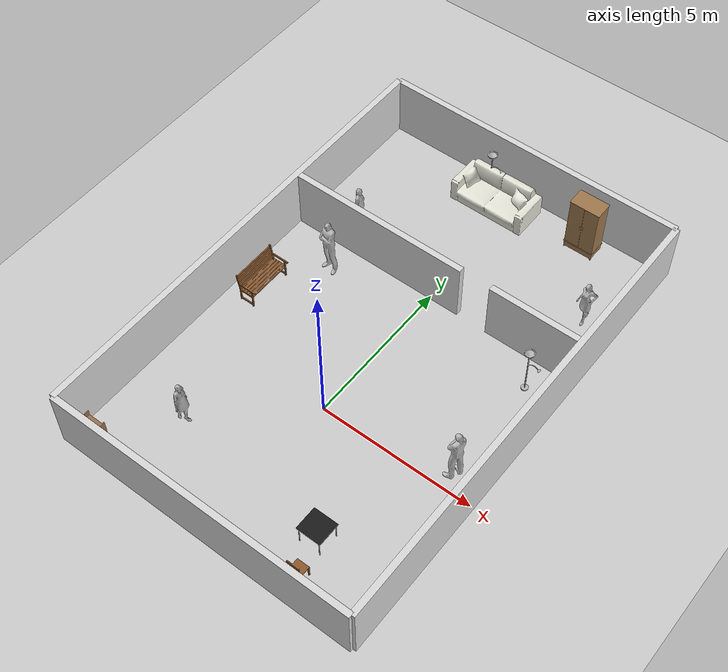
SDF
<?xml version="1.0" ?>
<sdf version="1.6">
  <world name="default">
    <physics name="1ms" type="ignored">
      <max_step_size>0.001</max_step_size>
      <real_time_factor>1.0</real_time_factor>
    </physics>
    <gravity>0 0 -9.81</gravity>
    <plugin filename="gz-sim-physics-system" name="gz::sim::systems::Physics"/>
    <plugin filename="gz-sim-user-commands-system" name="gz::sim::systems::UserCommands"/>
    <plugin filename="gz-sim-scene-broadcaster-system" name="gz::sim::systems::SceneBroadcaster"/>
    <plugin filename="gz-sim-sensors-system" name="gz::sim::systems::Sensors">
      <render_engine>ogre2</render_engine>
    </plugin>

    <scene>
      <ambient>0.4 0.4 0.4 1</ambient>
      <background>0.7 0.7 0.7 1</background>
      <shadows>true</shadows>
    </scene>

    <!-- A global light source (V8: model://sun) -->
    <light type="directional" name="sun">
      <cast_shadows>true</cast_shadows>
      <pose>0 0 10 0 0 0</pose>
      <diffuse>0.8 0.8 0.8 1</diffuse>
      <specular>0.2 0.2 0.2 1</specular>
      <attenuation>
        <range>1000</range>
        <constant>0.9</constant>
        <linear>0.01</linear>
        <quadratic>0.001</quadratic>
      </attenuation>
      <direction>-0.5 0.1 -0.9</direction>
    </light>

    <!-- A ground plane (V8: model://ground_plane) -->
    <model name="ground_plane">
      <static>true</static>
      <link name="link">
        <collision name="collision">
          <geometry><plane><normal>0 0 1</normal><size>100 100</size></plane></geometry>
          <surface><friction><ode><mu>100</mu><mu2>50</mu2></ode></friction></surface>
        </collision>
        <visual name="visual">
          <geometry><plane><normal>0 0 1</normal><size>100 100</size></plane></geometry>
          <material>
            <ambient>0.8 0.8 0.8 1</ambient>
            <diffuse>0.8 0.8 0.8 1</diffuse>
            <specular>0.8 0.8 0.8 1</specular>
          </material>
        </visual>
      </link>
    </model>

    <model name="wall_1_model">
      <pose>0 -5 1 0 0 0</pose>
      <static>true</static>
      <link name="wall_1_body">
        <inertial>
          <mass>1.0</mass>
          <inertia>
            <ixx>1.0</ixx>
            <ixy>0.0</ixy>
            <ixz>0.0</ixz>
            <iyy>1.0</iyy>
            <iyz>0.0</iyz>
            <izz>1.0</izz>
          </inertia>
        </inertial>
        <collision name="collision">
          <geometry>
            <box>
              <size>10 0.2 2</size>
            </box>
          </geometry>
        </collision>
        <visual name="visual">
          <geometry>
            <box>
              <size>10 0.2 2</size>
            </box>
          </geometry>
          <!-- V9: en Gazebo Classic una pared sin material se veía gris claro; en Harmonic, oscura -->
          <material>
            <ambient>0.85 0.85 0.85 1</ambient>
            <diffuse>0.85 0.85 0.85 1</diffuse>
            <specular>0.1 0.1 0.1 1</specular>
          </material>
        </visual>
      </link>
    </model>
    <model name="wall_2_model">
      <pose>0 10 1 0 0 0</pose>
      <static>true</static>
      <link name="wall_2_body">
        <inertial>
          <mass>1.0</mass>
          <inertia>
            <ixx>1.0</ixx>
            <ixy>0.0</ixy>
            <ixz>0.0</ixz>
            <iyy>1.0</iyy>
            <iyz>0.0</iyz>
            <izz>1.0</izz>
          </inertia>
        </inertial>
        <collision name="collision">
          <geometry>
            <box>
              <size>10 0.2 2</size>
            </box>
          </geometry>
        </collision>
        <visual name="visual">
          <geometry>
            <box>
              <size>10 0.2 2</size>
            </box>
          </geometry>
          <!-- V9: en Gazebo Classic una pared sin material se veía gris claro; en Harmonic, oscura -->
          <material>
            <ambient>0.85 0.85 0.85 1</ambient>
            <diffuse>0.85 0.85 0.85 1</diffuse>
            <specular>0.1 0.1 0.1 1</specular>
          </material>
        </visual>
      </link>
    </model>
    <model name="wall_3_model">
      <pose>-5 2.5 1 0 0 0</pose>
      <static>true</static>
      <link name="wall_3_body">
        <inertial>
          <mass>1.0</mass>
          <inertia>
            <ixx>1.0</ixx>
            <ixy>0.0</ixy>
            <ixz>0.0</ixz>
            <iyy>1.0</iyy>
            <iyz>0.0</iyz>
            <izz>1.0</izz>
          </inertia>
        </inertial>
        <collision name="collision">
          <geometry>
            <box>
              <size>0.2 15 2</size>
            </box>
          </geometry>
        </collision>
        <visual name="visual">
          <geometry>
            <box>
              <size>0.2 15 2</size>
            </box>
          </geometry>
          <!-- V9: en Gazebo Classic una pared sin material se veía gris claro; en Harmonic, oscura -->
          <material>
            <ambient>0.85 0.85 0.85 1</ambient>
            <diffuse>0.85 0.85 0.85 1</diffuse>
            <specular>0.1 0.1 0.1 1</specular>
          </material>
        </visual>
      </link>
    </model>
    <model name="wall_4_model">
      <pose>5 2.5 1 0 0 0</pose>
      <static>true</static>
      <link name="wall_4_body">
        <inertial>
          <mass>1.0</mass>
          <inertia>
            <ixx>1.0</ixx>
            <ixy>0.0</ixy>
            <ixz>0.0</ixz>
            <iyy>1.0</iyy>
            <iyz>0.0</iyz>
            <izz>1.0</izz>
          </inertia>
        </inertial>
        <collision name="collision">
          <geometry>
            <box>
              <size>0.2 15 2</size>
            </box>
          </geometry>
        </collision>
        <visual name="visual">
          <geometry>
            <box>
              <size>0.2 15 2</size>
            </box>
          </geometry>
          <!-- V9: en Gazebo Classic una pared sin material se veía gris claro; en Harmonic, oscura -->
          <material>
            <ambient>0.85 0.85 0.85 1</ambient>
            <diffuse>0.85 0.85 0.85 1</diffuse>
            <specular>0.1 0.1 0.1 1</specular>
          </material>
        </visual>
      </link>
    </model>
    <model name="wall_5_model">
      <pose>-2 5 1 0 0 0</pose>
      <static>true</static>
      <link name="wall_5_body">
        <inertial>
          <mass>1.0</mass>
          <inertia>
            <ixx>1.0</ixx>
            <ixy>0.0</ixy>
            <ixz>0.0</ixz>
            <iyy>1.0</iyy>
            <iyz>0.0</iyz>
            <izz>1.0</izz>
          </inertia>
        </inertial>
        <collision name="collision">
          <geometry>
            <box>
              <size>6 0.2 2</size>
            </box>
          </geometry>
        </collision>
        <visual name="visual">
          <geometry>
            <box>
              <size>6 0.2 2</size>
            </box>
          </geometry>
          <!-- V9: en Gazebo Classic una pared sin material se veía gris claro; en Harmonic, oscura -->
          <material>
            <ambient>0.85 0.85 0.85 1</ambient>
            <diffuse>0.85 0.85 0.85 1</diffuse>
            <specular>0.1 0.1 0.1 1</specular>
          </material>
        </visual>
      </link>
    </model>
    <model name="wall_6_model">
      <pose>3.5 5 1 0 0 0</pose>
      <static>true</static>
      <link name="wall_6_body">
        <inertial>
          <mass>1.0</mass>
          <inertia>
            <ixx>1.0</ixx>
            <ixy>0.0</ixy>
            <ixz>0.0</ixz>
            <iyy>1.0</iyy>
            <iyz>0.0</iyz>
            <izz>1.0</izz>
          </inertia>
        </inertial>
        <collision name="collision">
          <geometry>
            <box>
              <size>3 0.2 2</size>
            </box>
          </geometry>
        </collision>
        <visual name="visual">
          <geometry>
            <box>
              <size>3 0.2 2</size>
            </box>
          </geometry>
          <!-- V9: en Gazebo Classic una pared sin material se veía gris claro; en Harmonic, oscura -->
          <material>
            <ambient>0.85 0.85 0.85 1</ambient>
            <diffuse>0.85 0.85 0.85 1</diffuse>
            <specular>0.1 0.1 0.1 1</specular>
          </material>
        </visual>
      </link>
    </model>
    <!-- Add a chair -->
    <include>
      <uri>model://dining_chair</uri>
      <pose>2.5 -4.5 0.01 0 0 0</pose>
    </include>
    <!-- Add a kitchen table -->
    <include>
      <uri>model://kitchen_table</uri>
      <pose>2.000000 -3.551060 0.000000 0.000000 0.000000 0.000000</pose>
    </include>
    <!-- Add a wardrobe -->
    <include>
      <uri>model://wardrobe</uri>
      <pose>2.000000 9.000000 0.000000 0.000000 0.000000 0.000000</pose>
    </include>
    <!-- Add a closet -->
    <include>
      <uri>model://closet</uri>
      <pose>-4.000000 -5.000000 0.000000 0.000000 0.000000 0.000000</pose>
    </include>
    <!-- Add a bench -->
    <include>
      <uri>model://bench</uri>
      <pose>-4.465430 1.502710 0.000000 0.000000 0.000000 0.000000</pose>
    </include>
    <!-- Add a sofa -->
    <include>
      <uri>model://sofa</uri>
      <pose>-0.518195 9.000000 0.000000 0.000000 0.000000 0.000000</pose>
    </include>
    <!-- Add a floor lamp -->
    <include>
      <name>floor_lamp_0</name>
      <uri>model://floor_lamp</uri>
      <pose>-1.000000 9.417350 0.000000 0.000000 0.000000 0.000000</pose>
    </include>
    <!-- Add a floor lamp -->
    <include>
      <name>floor_lamp_1</name>
      <uri>model://floor_lamp</uri>
      <pose>4.000000 4.00000 0.000000 0.000000 0.000000 0.000000</pose>
    </include>
    <!-- Add male 03 -->
    <include>
      <name>male03</name>
      <uri>model://citizen_extras_male_03</uri>
      <pose>4.0 0.53 0.01 0.0125 0.0023 -1.718</pose>
    </include>

    <light type="point" name="male03light">
      <!-- Light in front of the face of the model -->
      <pose>3.6 0.53 1.6 0 0 0</pose>
      <diffuse>0.5 0.5 0.5 1</diffuse>
      <specular>0.1 0.1 0.1 1</specular>
      <attenuation>
        <!-- short range so it doesn't light the ground -->
        <range>1.0</range>
        <linear>0.01</linear>
        <constant>0.3</constant>
        <quadratic>0.0</quadratic>
      </attenuation>
      <direction>0 0 -1</direction>
      <spot>
        <inner_angle>0.6</inner_angle>
        <outer_angle>0.8</outer_angle>
        <falloff>1.2</falloff>
      </spot>
      <cast_shadows>false</cast_shadows>
    </light>

    <!-- Add female 02 -->
    <include>
      <name>female02</name>
      <uri>model://citizen_extras_female_02</uri>
      <pose>-2.84 -2.63 0.01 0 -0.025 1.683</pose>
    </include>

    <light type="point" name="female02light">
      <!-- Light in front of the face of the model -->
      <pose>-2.5 -2.63 1.5 0 0 0</pose>
      <diffuse>0.5 0.5 0.5 1</diffuse>
      <specular>0.1 0.1 0.1 1</specular>
      <attenuation>
        <!-- short range so it doesn't light the ground -->
        <range>1.0</range>
        <linear>0.01</linear>
        <constant>0.3</constant>
        <quadratic>0.0</quadratic>
      </attenuation>
      <direction>0 0 -1</direction>
      <spot>
        <inner_angle>0.6</inner_angle>
        <outer_angle>0.8</outer_angle>
        <falloff>1.2</falloff>
      </spot>
      <cast_shadows>false</cast_shadows>
    </light>

    <!-- Add female 03 -->
    <include>
      <name>female03</name>
      <uri>model://citizen_extras_female_03</uri>
      <pose>-3.3 5.8 0.01 0.011 0.0126 1.6451</pose>
    </include>

    <light type="point" name="female03light">
      <!-- Light in front of the face of the model -->
      <pose>-3.0 6.2 1.5 0 0 0</pose>
      <diffuse>0.5 0.5 0.5 1</diffuse>
      <specular>0.1 0.1 0.1 1</specular>
      <attenuation>
        <!-- short range so it doesn't light the ground -->
        <range>1.0</range>
        <linear>0.01</linear>
        <constant>0.3</constant>
        <quadratic>0.0</quadratic>
      </attenuation>
      <direction>0 0 -1</direction>
      <spot>
        <inner_angle>0.6</inner_angle>
        <outer_angle>0.8</outer_angle>
        <falloff>1.2</falloff>
      </spot>
      <cast_shadows>false</cast_shadows>
    </light>

    <!-- Add female 02 bis -->
    <include>
      <name>female02bis</name>
      <uri>model://citizen_extras_female_02</uri>
      <pose>4.000000 7.000000 0.000000 0.000000 0.000000 0.000000</pose>
    </include>

    <light type="point" name="female02bislight">
      <!-- Light in front of the face of the model -->
      <pose>3.8 6.7 1.5 0 0 0</pose>
      <diffuse>0.5 0.5 0.5 1</diffuse>
      <specular>0.1 0.1 0.1 1</specular>
      <attenuation>
        <!-- short range so it doesn't light the ground -->
        <range>1.0</range>
        <linear>0.01</linear>
        <constant>0.3</constant>
        <quadratic>0.0</quadratic>
      </attenuation>
      <direction>0 0 -1</direction>
      <spot>
        <inner_angle>0.6</inner_angle>
        <outer_angle>0.8</outer_angle>
        <falloff>1.2</falloff>
      </spot>
      <cast_shadows>false</cast_shadows>
    </light>

    <!-- Add male 03 bis -->
    <include>
      <name>male03bis</name>
      <uri>model://citizen_extras_male_03</uri>
      <pose>-3.000000 4.000000 0.000000 0.000000 0.000000 0.000000</pose>
    </include>

    <light type="point" name="male03bislight">
      <!-- Light in front of the face of the model -->
      <pose>-2.9 3.7 1.5 0 0 0</pose>
      <diffuse>0.5 0.5 0.5 1</diffuse>
      <specular>0.1 0.1 0.1 1</specular>
      <attenuation>
        <!-- short range so it doesn't light the ground -->
        <range>1.0</range>
        <linear>0.01</linear>
        <constant>0.3</constant>
        <quadratic>0.0</quadratic>
      </attenuation>
      <direction>0 0 -1</direction>
      <spot>
        <inner_angle>0.6</inner_angle>
        <outer_angle>0.8</outer_angle>
        <falloff>1.2</falloff>
      </spot>
      <cast_shadows>false</cast_shadows>
    </light>

    <!-- Change the gazebo camera point of view -->
    <gui fullscreen="0">
      <camera name="user_camera">
        <pose>0.685291 2.730300 18.477800 0.000000 1.529800 -3.138990</pose>
        <view_controller>orbit</view_controller>
      </camera>
    </gui>
  </world>
</sdf>

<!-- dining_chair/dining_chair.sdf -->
<sdf version="1.4">
  <model name="dining_chair">
    <static>1</static>
    <link name="link">

      <collision name="colision1">
        <pose>0 0 0 0 0 0</pose>
        <geometry>
          <mesh>
            <uri>model://dining_chair/meshes/dining_chair.stl</uri>
	    <scale> 1 1 1 </scale>
          </mesh>
        </geometry>
        <surface>
          <bounce />
          <friction>
            <ode />
          </friction>
          <contact>
            <ode />
          </contact>
        </surface>
      </collision>

      <visual name="visual1">
        <pose>0 0 0 0 0 0</pose>
        <geometry>
          <mesh>
            <uri>model://dining_chair/meshes/dining_chair.stl</uri>
	    <scale> 1 1 1 </scale>
          </mesh>
        </geometry>
        <material>
          <!-- V8: script Gazebo/Wood (Gazebo Classic) -->
          <ambient>0.55 0.35 0.18 1</ambient>
          <diffuse>0.55 0.35 0.18 1</diffuse>
          <specular>0.1 0.1 0.1 1</specular>
        </material>
      </visual>

      <velocity_decay>
        <linear>0.000000</linear>
        <angular>0.000000</angular>
      </velocity_decay>
      <self_collide>0</self_collide>
      <kinematic>0</kinematic>
      <gravity>1</gravity>
    </link>
  </model>
</sdf>

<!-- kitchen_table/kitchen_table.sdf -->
<sdf version="1.4">
  <model name="kitchen_table">
    <static>1</static>
    <link name="link">

      <collision name="colision1">
        <pose>0 0 0 0 0 0</pose>
        <geometry>
          <mesh>
            <uri>model://kitchen_table/meshes/kitchen_table.stl</uri>
	    <scale> 1 1 1 </scale>
          </mesh>
        </geometry>
        <surface>
          <bounce />
          <friction>
            <ode />
          </friction>
          <contact>
            <ode />
          </contact>
        </surface>
      </collision>

      <visual name="visual1">
        <pose>0 0 0 0 0 0</pose>
        <geometry>
          <mesh>
            <uri>model://kitchen_table/meshes/kitchen_table.stl</uri>
	    <scale> 1 1 1 </scale>
          </mesh>
        </geometry>
        <material>
          <!-- V8: script Gazebo/FlatBlack (Gazebo Classic) -->
          <ambient>0.10 0.10 0.10 1</ambient>
          <diffuse>0.10 0.10 0.10 1</diffuse>
          <specular>0.1 0.1 0.1 1</specular>
        </material>
      </visual>

      <velocity_decay>
        <linear>0.000000</linear>
        <angular>0.000000</angular>
      </velocity_decay>
      <self_collide>0</self_collide>
      <kinematic>0</kinematic>
      <gravity>1</gravity>
    </link>
  </model>
</sdf>

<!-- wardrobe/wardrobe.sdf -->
<sdf version="1.4">
  <model name="wardrobe">
    <static>1</static>
    <link name="link">

      <collision name="colision1">
        <pose>0 0 0 0 0 0</pose>
        <geometry>
          <mesh>
            <uri>model://wardrobe/meshes/wardrobe.stl</uri>
	    <scale> 1 1 1 </scale>
          </mesh>
        </geometry>
        <surface>
          <bounce />
          <friction>
            <ode />
          </friction>
          <contact>
            <ode />
          </contact>
        </surface>
      </collision>

      <visual name="visual1">
        <pose>0 0 0 0 0 0</pose>
        <geometry>
          <mesh>
            <uri>model://wardrobe/meshes/wardrobe.stl</uri>
	    <scale> 1 1 1 </scale>
          </mesh>
        </geometry>
        <material>
          <!-- V8: script Gazebo/WoodPallet (Gazebo Classic) -->
          <ambient>0.62 0.47 0.30 1</ambient>
          <diffuse>0.62 0.47 0.30 1</diffuse>
          <specular>0.1 0.1 0.1 1</specular>
        </material>
      </visual>

      <velocity_decay>
        <linear>0.000000</linear>
        <angular>0.000000</angular>
      </velocity_decay>
      <self_collide>0</self_collide>
      <kinematic>0</kinematic>
      <gravity>1</gravity>
    </link>
  </model>
</sdf>

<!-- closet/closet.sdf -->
<sdf version="1.4">
  <model name="closet">
    <static>1</static>
    <link name="link">

      <collision name="colision1">
        <pose>0 0 0 0 0 0</pose>
        <geometry>
          <mesh>
            <uri>model://closet/meshes/closet.stl</uri>
	    <scale> 1 1 1 </scale>
          </mesh>
        </geometry>
        <surface>
          <bounce />
          <friction>
            <ode />
          </friction>
          <contact>
            <ode />
          </contact>
        </surface>
      </collision>

      <visual name="visual1">
        <pose>0 0 0 0 0 0</pose>
        <geometry>
          <mesh>
            <uri>model://closet/meshes/closet.stl</uri>
	    <scale> 1 1 1 </scale>
          </mesh>
        </geometry>
        <material>
          <!-- V8: script Gazebo/WoodFloor (Gazebo Classic) -->
          <ambient>0.60 0.45 0.30 1</ambient>
          <diffuse>0.60 0.45 0.30 1</diffuse>
          <specular>0.1 0.1 0.1 1</specular>
        </material>
      </visual>

      <velocity_decay>
        <linear>0.000000</linear>
        <angular>0.000000</angular>
      </velocity_decay>
      <self_collide>0</self_collide>
      <kinematic>0</kinematic>
      <gravity>1</gravity>
    </link>
  </model>
</sdf>

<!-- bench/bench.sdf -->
<sdf version="1.4">
  <model name="bench">
    <static>1</static>
    <link name="link">

      <collision name="colision1">
        <pose>0 0 0 0 0 0</pose>
        <geometry>
          <mesh>
            <uri>model://bench/meshes/bench.stl</uri>
	    <scale> 1 1 1 </scale>
          </mesh>
        </geometry>
        <surface>
          <bounce />
          <friction>
            <ode />
          </friction>
          <contact>
            <ode />
          </contact>
        </surface>
      </collision>

      <visual name="visual1">
        <pose>0 0 0 0 0 0</pose>
        <geometry>
          <mesh>
            <uri>model://bench/meshes/bench.stl</uri>
	    <scale> 1 1 1 </scale>
          </mesh>
        </geometry>
        <material>
          <!-- V8: script Gazebo/Wood (Gazebo Classic) -->
          <ambient>0.55 0.35 0.18 1</ambient>
          <diffuse>0.55 0.35 0.18 1</diffuse>
          <specular>0.1 0.1 0.1 1</specular>
        </material>
      </visual>

      <velocity_decay>
        <linear>0.000000</linear>
        <angular>0.000000</angular>
      </velocity_decay>
      <self_collide>0</self_collide>
      <kinematic>0</kinematic>
      <gravity>1</gravity>
    </link>
  </model>
</sdf>

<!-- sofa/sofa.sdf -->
<sdf version="1.4">
  <model name="sofa">
    <static>1</static>
    <link name="link">

      <collision name="colision1">
        <pose>0 0 0 0 0 0</pose>
        <geometry>
          <mesh>
            <uri>model://sofa/meshes/sofa.stl</uri>
	    <scale> 1 1 1 </scale>
          </mesh>
        </geometry>
        <surface>
          <bounce />
          <friction>
            <ode />
          </friction>
          <contact>
            <ode />
          </contact>
        </surface>
      </collision>

      <visual name="visual1">
        <pose>0 0 0 0 0 0</pose>
        <geometry>
          <mesh>
            <uri>model://sofa/meshes/sofa.stl</uri>
	    <scale> 1 1 1 </scale>
          </mesh>
        </geometry>
        <material>
          <!-- V8: script Gazebo/PaintedWall (Gazebo Classic) -->
          <ambient>0.90 0.90 0.85 1</ambient>
          <diffuse>0.90 0.90 0.85 1</diffuse>
          <specular>0.1 0.1 0.1 1</specular>
        </material>
      </visual>

      <velocity_decay>
        <linear>0.000000</linear>
        <angular>0.000000</angular>
      </velocity_decay>
      <self_collide>0</self_collide>
      <kinematic>0</kinematic>
      <gravity>1</gravity>
    </link>
  </model>
</sdf>

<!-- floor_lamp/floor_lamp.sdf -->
<sdf version="1.4">
  <model name="floor_lamp">
    <static>1</static>
    <link name="link">

      <collision name="colision1">
        <pose>0 0 0 0 0 0</pose>
        <geometry>
          <mesh>
            <uri>model://floor_lamp/meshes/floor_lamp.stl</uri>
	    <scale> 1 1 1 </scale>
          </mesh>
        </geometry>
        <surface>
          <bounce />
          <friction>
            <ode />
          </friction>
          <contact>
            <ode />
          </contact>
        </surface>
      </collision>

      <visual name="visual1">
        <pose>0 0 0 0 0 0</pose>
        <geometry>
          <mesh>
            <uri>model://floor_lamp/meshes/floor_lamp.stl</uri>
	    <scale> 1 1 1 </scale>
          </mesh>
        </geometry>
        <material>
          <!-- V8: script Gazebo/Grey (Gazebo Classic) -->
          <ambient>0.70 0.70 0.70 1</ambient>
          <diffuse>0.70 0.70 0.70 1</diffuse>
          <specular>0.1 0.1 0.1 1</specular>
        </material>
      </visual>

      <velocity_decay>
        <linear>0.000000</linear>
        <angular>0.000000</angular>
      </velocity_decay>
      <self_collide>0</self_collide>
      <kinematic>0</kinematic>
      <gravity>1</gravity>
    </link>
  </model>
</sdf>

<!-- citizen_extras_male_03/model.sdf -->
<sdf version="1.4">

 <model name="citizen_extras_male_03">

    <!-- V9: estático (el V8 tenía masa 20 kg con inercia 0, que DART no admite) -->
    <static>true</static>
    <link name="link">

     <inertial>

       <mass>20</mass>

       <inertia>

         <ixx>0.0</ixx>

         <ixy>0.0</ixy>

         <ixz>0.0</ixz>

         <iyy>0.0</iyy>

         <iyz>0.0</iyz>

         <izz>0.0</izz>

       </inertia>

     </inertial>

     <collision name="collision">

       <pose>0 0 0 0 0 0</pose>

       <geometry>

         <mesh>

           <uri>model://citizen_extras_male_03/meshes/mesh.dae</uri>

         </mesh>

       </geometry>

     </collision>

     <visual name="visual">

       <pose>0 0 0 0 0 0</pose>

       <geometry>

         <mesh>

           <uri>model://citizen_extras_male_03/meshes/mesh.dae</uri>

         </mesh>

       </geometry>

     </visual>

    </link>

 </model>
</sdf>

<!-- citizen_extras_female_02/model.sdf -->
<sdf version="1.4">

 <model name="citizen_extras_female_02">

    <!-- V9: estático (el V8 tenía masa 20 kg con inercia 0, que DART no admite) -->
    <static>true</static>
    <link name="link">

     <inertial>

       <mass>20</mass>

       <inertia>

         <ixx>0.0</ixx>

         <ixy>0.0</ixy>

         <ixz>0.0</ixz>

         <iyy>0.0</iyy>

         <iyz>0.0</iyz>

         <izz>0.0</izz>

       </inertia>

     </inertial>

     <collision name="collision">

       <pose>0 0 0 0 0 0</pose>

       <geometry>

         <mesh>

           <uri>model://citizen_extras_female_02/meshes/mesh.dae</uri>

         </mesh>

       </geometry>

     </collision>

     <visual name="visual">

       <pose>0 0 0 0 0 0</pose>

       <geometry>

         <mesh>

           <uri>model://citizen_extras_female_02/meshes/mesh.dae</uri>

         </mesh>

       </geometry>

     </visual>

    </link>

 </model>
</sdf>

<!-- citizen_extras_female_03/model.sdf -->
<sdf version="1.4">

 <model name="citizen_extras_female_03">

    <!-- V9: estático (el V8 tenía masa 20 kg con inercia 0, que DART no admite) -->
    <static>true</static>
    <link name="link">

     <inertial>

       <mass>20</mass>

       <inertia>

         <ixx>0.0</ixx>

         <ixy>0.0</ixy>

         <ixz>0.0</ixz>

         <iyy>0.0</iyy>

         <iyz>0.0</iyz>

         <izz>0.0</izz>

       </inertia>

     </inertial>

     <collision name="collision">

       <pose>0 0 0 0 0 0</pose>

       <geometry>

         <mesh>

           <uri>model://citizen_extras_female_03/meshes/mesh.dae</uri>

         </mesh>

       </geometry>

     </collision>

     <visual name="visual">

       <pose>0 0 0 0 0 0</pose>

       <geometry>

         <mesh>

           <uri>model://citizen_extras_female_03/meshes/mesh.dae</uri>

         </mesh>

       </geometry>

     </visual>

    </link>

 </model>
</sdf>
